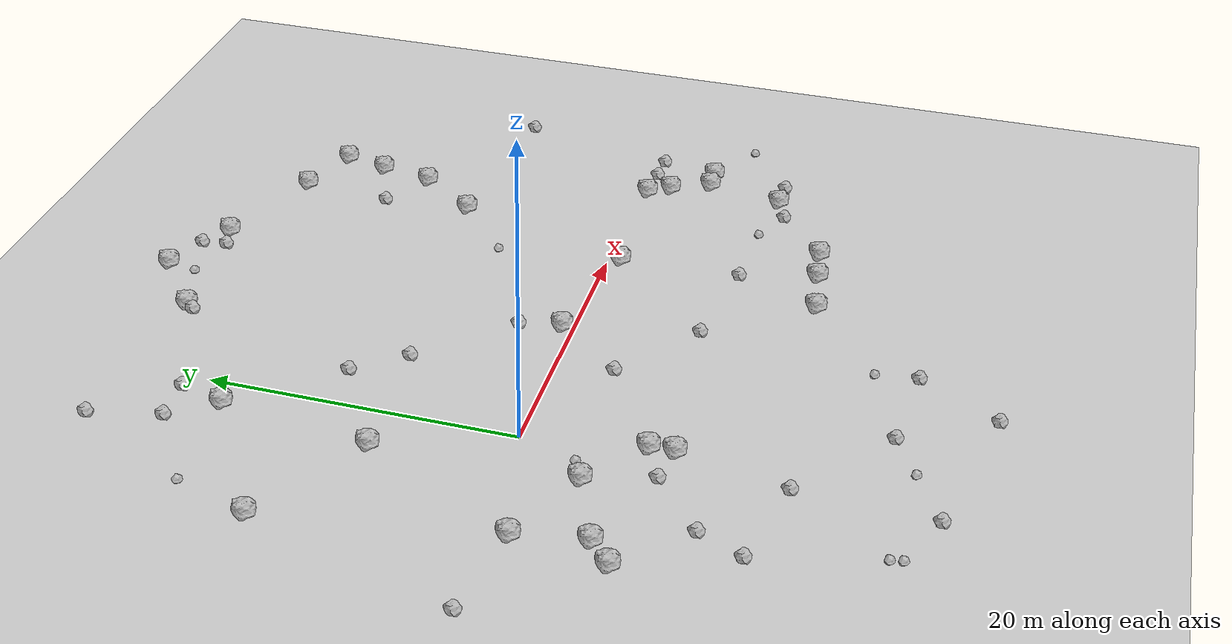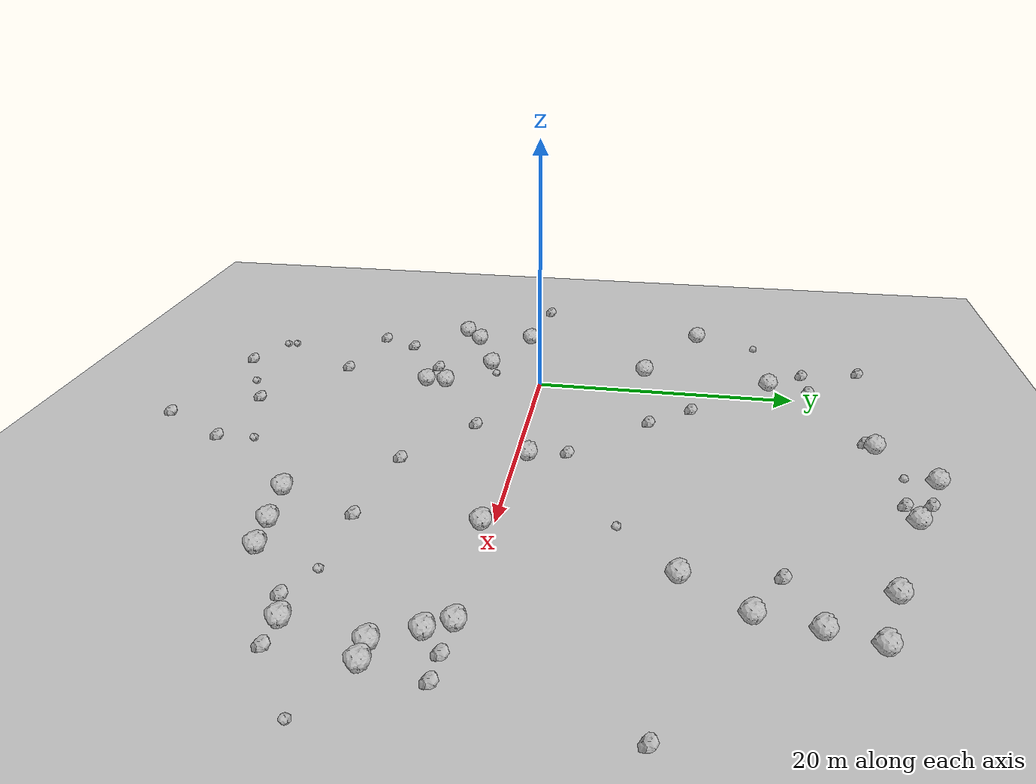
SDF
<sdf version="1.6">
 <world name="default">
  <include><uri>model://custom_ground</uri></include>
  <include><uri>model://sun</uri></include>
  <model name="rock1_0_0">
   <include><uri>model://rock1</uri><pose>-8.614815972260747 -2.031777418724097 0.5 0 0 0</pose></include>
  </model>
  <model name="rock1_0_1">
   <include><uri>model://rock1</uri><pose>-7.78394422322534 -6.519286319149742 0.5 0 0 0</pose></include>
  </model>
  <model name="rock1_0_2">
   <include><uri>model://rock1</uri><pose>16.450575903881585 26.097308537836838 0.5 0 0 0</pose></include>
  </model>
  <model name="rock1_0_3">
   <include><uri>model://rock1</uri><pose>25.048286998333765 -13.57424045054633 0.5 0 0 0</pose></include>
  </model>
  <model name="rock1_0_4">
   <include><uri>model://rock1</uri><pose>30.845028973610283 -1.8283044203259138 0.5 0 0 0</pose></include>
  </model>
  <model name="rock1_0_5">
   <include><uri>model://rock1</uri><pose>31.105628573079557 -9.634798838016849 0.5 0 0 0</pose></include>
  </model>
  <model name="rock1_0_6">
   <include><uri>model://rock1</uri><pose>1.2116098737961067 -9.155087053678479 0.5 0 0 0</pose></include>
  </model>
  <model name="rock1_0_7">
   <include><uri>model://rock1</uri><pose>20.60094537308914 -0.7698538696838746 0.5 0 0 0</pose></include>
  </model>
  <model name="rock1_0_8">
   <include><uri>model://rock1</uri><pose>-11.111936646972662 12.696370638636132 0.5 0 0 0</pose></include>
  </model>
  <model name="rock1_0_9">
   <include><uri>model://rock1</uri><pose>29.94744842816656 -0.3418322745827602 0.5 0 0 0</pose></include>
  </model>
  <model name="rock1_0_10">
   <include><uri>model://rock1</uri><pose>33.65161738342316 -4.433969054398069 0.5 0 0 0</pose></include>
  </model>
  <model name="rock1_0_11">
   <include><uri>model://rock1</uri><pose>-1.990939021658189 18.294187346339847 0.5 0 0 0</pose></include>
  </model>
  <model name="rock1_0_12">
   <include><uri>model://rock1</uri><pose>26.979606332138225 15.300556889000553 0.5 0 0 0</pose></include>
  </model>
  <model name="rock1_0_13">
   <include><uri>model://rock1</uri><pose>11.461669302039844 28.328962852112078 0.5 0 0 0</pose></include>
  </model>
  <model name="rock1_0_14">
   <include><uri>model://rock1</uri><pose>-3.2583402944482778 8.331019267700817 0.5 0 0 0</pose></include>
  </model>
  <model name="rock1_0_15">
   <include><uri>model://rock1</uri><pose>27.691527248052424 18.947970701960756 0.5 0 0 0</pose></include>
  </model>
  <model name="rock1_0_16">
   <include><uri>model://rock1</uri><pose>11.846975142518822 0.8019712065095135 0.5 0 0 0</pose></include>
  </model>
  <model name="rock1_0_17">
   <include><uri>model://rock1</uri><pose>18.648989399496777 -14.463767348111897 0.5 0 0 0</pose></include>
  </model>
  <model name="rock1_0_18">
   <include><uri>model://rock1</uri><pose>-9.455360737750013 -7.9521600681284355 0.5 0 0 0</pose></include>
  </model>
  <model name="rock1_0_19">
   <include><uri>model://rock1</uri><pose>7.245304161462027 24.990108508983013 0.5 0 0 0</pose></include>
  </model>
  <model name="rock1_0_20">
   <include><uri>model://rock1</uri><pose>-2.770140659580356 -4.511709650625917 0.5 0 0 0</pose></include>
  </model>
  <model name="rock1_0_21">
   <include><uri>model://rock1</uri><pose>22.31715483982051 -13.927593068678306 0.5 0 0 0</pose></include>
  </model>
  <model name="rock1_0_22">
   <include><uri>model://rock1</uri><pose>24.03499033692549 23.41785101547471 0.5 0 0 0</pose></include>
  </model>
  <model name="rock1_0_23">
   <include><uri>model://rock1</uri><pose>24.071305839644992 11.341626411790493 0.5 0 0 0</pose></include>
  </model>
  <model name="rock1_0_24">
   <include><uri>model://rock1</uri><pose>28.424665338773018 21.987338085395763 0.5 0 0 0</pose></include>
  </model>
  <model name="rock1_0_25">
   <include><uri>model://rock1</uri><pose>1.1732346758293772 -7.581657074117533 0.5 0 0 0</pose></include>
  </model>
  <model name="rock1_0_26">
   <include><uri>model://rock1</uri><pose>32.13419248268533 -4.464479660629902 0.5 0 0 0</pose></include>
  </model>
  <model name="rock2_0_0">
   <include><uri>model://rock2</uri><pose>14.409209959312022 27.321310593781483 0.3 0 0 0</pose></include>
  </model>
  <model name="rock2_0_1">
   <include><uri>model://rock2</uri><pose>20.81249336249276 -8.907072935852863 0.3 0 0 0</pose></include>
  </model>
  <model name="rock2_0_2">
   <include><uri>model://rock2</uri><pose>13.579138084592742 -7.8661428868274434 0.3 0 0 0</pose></include>
  </model>
  <model name="rock2_0_3">
   <include><uri>model://rock2</uri><pose>36.67901477001802 10.16250796611451 0.3 0 0 0</pose></include>
  </model>
  <model name="rock2_0_4">
   <include><uri>model://rock2</uri><pose>9.420434825224145 -27.113929422374554 0.3 0 0 0</pose></include>
  </model>
  <model name="rock2_0_5">
   <include><uri>model://rock2</uri><pose>29.055174253543413 -10.397592668865279 0.3 0 0 0</pose></include>
  </model>
  <model name="rock2_0_6">
   <include><uri>model://rock2</uri><pose>-1.5424966038495285 -8.778317953621343 0.3 0 0 0</pose></include>
  </model>
  <model name="rock2_0_7">
   <include><uri>model://rock2</uri><pose>-6.866722520114932 -14.863897702726948 0.3 0 0 0</pose></include>
  </model>
  <model name="rock2_0_8">
   <include><uri>model://rock2</uri><pose>-5.284800351336141 25.746670673359326 0.3 0 0 0</pose></include>
  </model>
  <model name="rock2_0_9">
   <include><uri>model://rock2</uri><pose>6.034992084528092 -21.36931022967329 0.3 0 0 0</pose></include>
  </model>
  <model name="rock2_0_10">
   <include><uri>model://rock2</uri><pose>12.45413126486983 -21.95559689869395 0.3 0 0 0</pose></include>
  </model>
  <model name="rock2_0_11">
   <include><uri>model://rock2</uri><pose>23.392275936064337 17.259120297020047 0.3 0 0 0</pose></include>
  </model>
  <model name="rock2_0_12">
   <include><uri>model://rock2</uri><pose>6.706672027791207 24.399355450046684 0.3 0 0 0</pose></include>
  </model>
  <model name="rock2_0_13">
   <include><uri>model://rock2</uri><pose>-5.520248896988441 -11.962757252780051 0.3 0 0 0</pose></include>
  </model>
  <model name="rock2_0_14">
   <include><uri>model://rock2</uri><pose>32.36767726548033 -0.49863255828552155 0.3 0 0 0</pose></include>
  </model>
  <model name="rock2_0_15">
   <include><uri>model://rock2</uri><pose>7.976211280331039 -3.6601295426017693 0.3 0 0 0</pose></include>
  </model>
  <model name="rock2_0_16">
   <include><uri>model://rock2</uri><pose>3.2909511551260877 12.146163806576546 0.3 0 0 0</pose></include>
  </model>
  <model name="rock2_0_17">
   <include><uri>model://rock2</uri><pose>14.652089541056739 25.636717222694067 0.3 0 0 0</pose></include>
  </model>
  <model name="rock2_0_18">
   <include><uri>model://rock2</uri><pose>33.115382564736734 -9.729900189575268 0.3 0 0 0</pose></include>
  </model>
  <model name="rock2_0_19">
   <include><uri>model://rock2</uri><pose>-1.1944686600937544 21.324705453570026 0.3 0 0 0</pose></include>
  </model>
  <model name="rock2_0_20">
   <include><uri>model://rock2</uri><pose>-15.290927961530883 -1.062250149351783 0.3 0 0 0</pose></include>
  </model>
  <model name="rock2_0_21">
   <include><uri>model://rock2</uri><pose>-0.7980286664748029 -24.892618927561394 0.3 0 0 0</pose></include>
  </model>
  <model name="rock2_0_22">
   <include><uri>model://rock2</uri><pose>11.208407206872256 3.544744424036722 0.3 0 0 0</pose></include>
  </model>
  <model name="rock2_0_23">
   <include><uri>model://rock2</uri><pose>-0.393970821190333 -16.252222595322515 0.3 0 0 0</pose></include>
  </model>
  <model name="rock2_0_24">
   <include><uri>model://rock2</uri><pose>34.36187231754576 -0.5653677214267603 0.3 0 0 0</pose></include>
  </model>
  <model name="rock2_0_25">
   <include><uri>model://rock2</uri><pose>-4.2213651732602955 21.133441623766068 0.3 0 0 0</pose></include>
  </model>
  <model name="rock2_0_26">
   <include><uri>model://rock2</uri><pose>5.830619326409529 9.015501080379892 0.3 0 0 0</pose></include>
  </model>
  <model name="rock3_0_0">
   <include><uri>model://rock3</uri><pose>-9.57347981255934 17.587470287744665 0.2 0 0 0</pose></include>
  </model>
  <model name="rock3_0_1">
   <include><uri>model://rock3</uri><pose>12.160525751083718 -19.26861525867066 0.2 0 0 0</pose></include>
  </model>
  <model name="rock3_0_2">
   <include><uri>model://rock3</uri><pose>-4.643859127121804 -23.313236719334803 0.2 0 0 0</pose></include>
  </model>
  <model name="rock3_0_3">
   <include><uri>model://rock3</uri><pose>19.517468401838087 7.540364194830211 0.2 0 0 0</pose></include>
  </model>
  <model name="rock3_0_4">
   <include><uri>model://rock3</uri><pose>-1.3547753206492956 -3.8376332944933367 0.2 0 0 0</pose></include>
  </model>
  <model name="rock3_0_5">
   <include><uri>model://rock3</uri><pose>26.359345595988188 -9.170765084433505 0.2 0 0 0</pose></include>
  </model>
  <model name="rock3_0_6">
   <include><uri>model://rock3</uri><pose>3.00697459490409 -23.020118580790587 0.2 0 0 0</pose></include>
  </model>
  <model name="rock3_0_7">
   <include><uri>model://rock3</uri><pose>37.59665895831816 -6.690484115418688 0.2 0 0 0</pose></include>
  </model>
  <model name="rock3_0_8">
   <include><uri>model://rock3</uri><pose>11.013151965692153 26.267422147189137 0.2 0 0 0</pose></include>
  </model>
  <model name="rock3_0_9">
   <include><uri>model://rock3</uri><pose>-4.781701689016163 -22.555796898171003 0.2 0 0 0</pose></include>
  </model>
 </world>
</sdf>
